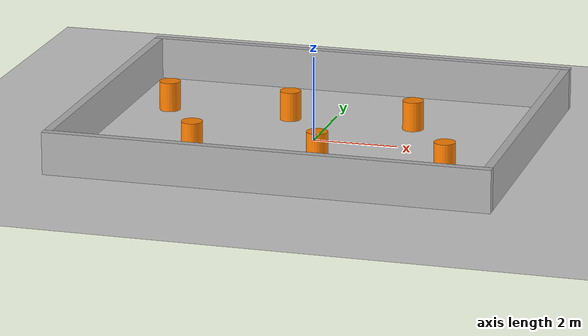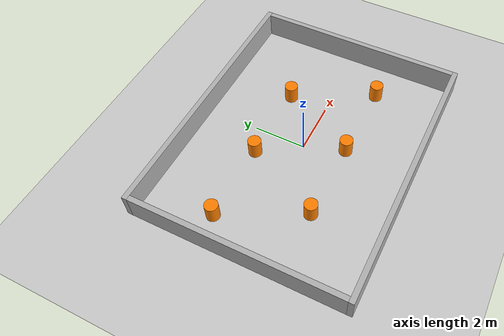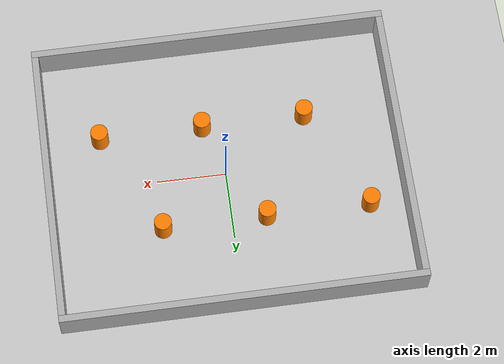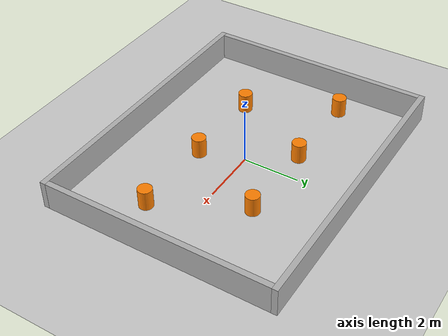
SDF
<?xml version="1.0" ?>
<sdf version="1.8">
  <world name="world_09_slalom">
    <!-- Physics -->
    <physics name="1ms" type="ignored">
      <max_step_size>0.001</max_step_size>
      <real_time_factor>1.0</real_time_factor>
    </physics>

    <!-- Plugins -->
    <plugin filename="gz-sim-physics-system" name="gz::sim::systems::Physics"/>
    <plugin filename="gz-sim-user-commands-system" name="gz::sim::systems::UserCommands"/>
    <plugin filename="gz-sim-scene-broadcaster-system" name="gz::sim::systems::SceneBroadcaster"/>
    <plugin filename="gz-sim-sensors-system" name="gz::sim::systems::Sensors">
      <render_engine>ogre2</render_engine>
    </plugin>

    <!-- Lighting -->
    <light type="directional" name="sun">
      <cast_shadows>true</cast_shadows>
      <pose>0 0 10 0 0 0</pose>
      <diffuse>0.8 0.8 0.8 1</diffuse>
      <specular>0.2 0.2 0.2 1</specular>
      <attenuation>
        <range>1000</range>
        <constant>0.9</constant>
        <linear>0.01</linear>
        <quadratic>0.001</quadratic>
      </attenuation>
      <direction>-0.5 0.1 -0.9</direction>
    </light>

    <!-- Ground Plane -->
    <model name="ground_plane">
      <static>true</static>
      <link name="link">
        <collision name="collision">
          <geometry>
            <plane>
              <normal>0 0 1</normal>
              <size>100 100</size>
            </plane>
          </geometry>
        </collision>
        <visual name="visual">
          <geometry>
            <plane>
              <normal>0 0 1</normal>
              <size>100 100</size>
            </plane>
          </geometry>
          <material>
            <ambient>0.8 0.8 0.8 1</ambient>
            <diffuse>0.8 0.8 0.8 1</diffuse>
            <specular>0.8 0.8 0.8 1</specular>
          </material>
        </visual>
      </link>
    </model>

    <!-- Walls - Rectangular arena 10m x 8m -->
    <!-- North Wall -->
    <model name="wall_north">
      <static>true</static>
      <pose>0 4.1 0.5 0 0 0</pose>
      <link name="link">
        <collision name="collision">
          <geometry>
            <box>
              <size>10.4 0.2 1.0</size>
            </box>
          </geometry>
        </collision>
        <visual name="visual">
          <geometry>
            <box>
              <size>10.4 0.2 1.0</size>
            </box>
          </geometry>
          <material>
            <ambient>0.5 0.5 0.5 1</ambient>
            <diffuse>0.7 0.7 0.7 1</diffuse>
            <specular>0.1 0.1 0.1 1</specular>
          </material>
        </visual>
      </link>
    </model>

    <!-- South Wall -->
    <model name="wall_south">
      <static>true</static>
      <pose>0 -4.1 0.5 0 0 0</pose>
      <link name="link">
        <collision name="collision">
          <geometry>
            <box>
              <size>10.4 0.2 1.0</size>
            </box>
          </geometry>
        </collision>
        <visual name="visual">
          <geometry>
            <box>
              <size>10.4 0.2 1.0</size>
            </box>
          </geometry>
          <material>
            <ambient>0.5 0.5 0.5 1</ambient>
            <diffuse>0.7 0.7 0.7 1</diffuse>
            <specular>0.1 0.1 0.1 1</specular>
          </material>
        </visual>
      </link>
    </model>

    <!-- East Wall -->
    <model name="wall_east">
      <static>true</static>
      <pose>5.1 0 0.5 0 0 0</pose>
      <link name="link">
        <collision name="collision">
          <geometry>
            <box>
              <size>0.2 8.0 1.0</size>
            </box>
          </geometry>
        </collision>
        <visual name="visual">
          <geometry>
            <box>
              <size>0.2 8.0 1.0</size>
            </box>
          </geometry>
          <material>
            <ambient>0.5 0.5 0.5 1</ambient>
            <diffuse>0.7 0.7 0.7 1</diffuse>
            <specular>0.1 0.1 0.1 1</specular>
          </material>
        </visual>
      </link>
    </model>

    <!-- West Wall -->
    <model name="wall_west">
      <static>true</static>
      <pose>-5.1 0 0.5 0 0 0</pose>
      <link name="link">
        <collision name="collision">
          <geometry>
            <box>
              <size>0.2 8.0 1.0</size>
            </box>
          </geometry>
        </collision>
        <visual name="visual">
          <geometry>
            <box>
              <size>0.2 8.0 1.0</size>
            </box>
          </geometry>
          <material>
            <ambient>0.5 0.5 0.5 1</ambient>
            <diffuse>0.7 0.7 0.7 1</diffuse>
            <specular>0.1 0.1 0.1 1</specular>
          </material>
        </visual>
      </link>
    </model>

    <!-- Slalom cones - alternating positions for weaving -->
    <model name="cone_1">
      <static>true</static>
      <pose>-4.0 1.5 0.35 0 0 0</pose>
      <link name="link">
        <collision name="collision">
          <geometry>
            <cylinder>
              <radius>0.25</radius>
              <length>0.7</length>
            </cylinder>
          </geometry>
        </collision>
        <visual name="visual">
          <geometry>
            <cylinder>
              <radius>0.25</radius>
              <length>0.7</length>
            </cylinder>
          </geometry>
          <material>
            <ambient>1.0 0.5 0.0 1</ambient>
            <diffuse>1.0 0.5 0.0 1</diffuse>
            <specular>0.1 0.1 0.1 1</specular>
          </material>
        </visual>
      </link>
    </model>

    <model name="cone_2">
      <static>true</static>
      <pose>-2.5 -1.5 0.35 0 0 0</pose>
      <link name="link">
        <collision name="collision">
          <geometry>
            <cylinder>
              <radius>0.25</radius>
              <length>0.7</length>
            </cylinder>
          </geometry>
        </collision>
        <visual name="visual">
          <geometry>
            <cylinder>
              <radius>0.25</radius>
              <length>0.7</length>
            </cylinder>
          </geometry>
          <material>
            <ambient>1.0 0.5 0.0 1</ambient>
            <diffuse>1.0 0.5 0.0 1</diffuse>
            <specular>0.1 0.1 0.1 1</specular>
          </material>
        </visual>
      </link>
    </model>

    <model name="cone_3">
      <static>true</static>
      <pose>-1.0 1.5 0.35 0 0 0</pose>
      <link name="link">
        <collision name="collision">
          <geometry>
            <cylinder>
              <radius>0.25</radius>
              <length>0.7</length>
            </cylinder>
          </geometry>
        </collision>
        <visual name="visual">
          <geometry>
            <cylinder>
              <radius>0.25</radius>
              <length>0.7</length>
            </cylinder>
          </geometry>
          <material>
            <ambient>1.0 0.5 0.0 1</ambient>
            <diffuse>1.0 0.5 0.0 1</diffuse>
            <specular>0.1 0.1 0.1 1</specular>
          </material>
        </visual>
      </link>
    </model>

    <model name="cone_4">
      <static>true</static>
      <pose>0.5 -1.5 0.35 0 0 0</pose>
      <link name="link">
        <collision name="collision">
          <geometry>
            <cylinder>
              <radius>0.25</radius>
              <length>0.7</length>
            </cylinder>
          </geometry>
        </collision>
        <visual name="visual">
          <geometry>
            <cylinder>
              <radius>0.25</radius>
              <length>0.7</length>
            </cylinder>
          </geometry>
          <material>
            <ambient>1.0 0.5 0.0 1</ambient>
            <diffuse>1.0 0.5 0.0 1</diffuse>
            <specular>0.1 0.1 0.1 1</specular>
          </material>
        </visual>
      </link>
    </model>

    <model name="cone_5">
      <static>true</static>
      <pose>2.0 1.5 0.35 0 0 0</pose>
      <link name="link">
        <collision name="collision">
          <geometry>
            <cylinder>
              <radius>0.25</radius>
              <length>0.7</length>
            </cylinder>
          </geometry>
        </collision>
        <visual name="visual">
          <geometry>
            <cylinder>
              <radius>0.25</radius>
              <length>0.7</length>
            </cylinder>
          </geometry>
          <material>
            <ambient>1.0 0.5 0.0 1</ambient>
            <diffuse>1.0 0.5 0.0 1</diffuse>
            <specular>0.1 0.1 0.1 1</specular>
          </material>
        </visual>
      </link>
    </model>

    <model name="cone_6">
      <static>true</static>
      <pose>3.5 -1.5 0.35 0 0 0</pose>
      <link name="link">
        <collision name="collision">
          <geometry>
            <cylinder>
              <radius>0.25</radius>
              <length>0.7</length>
            </cylinder>
          </geometry>
        </collision>
        <visual name="visual">
          <geometry>
            <cylinder>
              <radius>0.25</radius>
              <length>0.7</length>
            </cylinder>
          </geometry>
          <material>
            <ambient>1.0 0.5 0.0 1</ambient>
            <diffuse>1.0 0.5 0.0 1</diffuse>
            <specular>0.1 0.1 0.1 1</specular>
          </material>
        </visual>
      </link>
    </model>

  </world>
</sdf>
